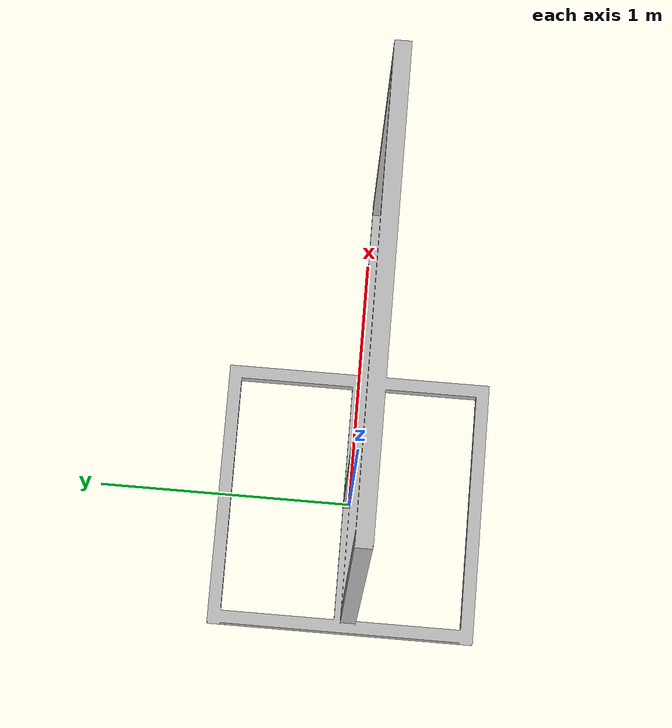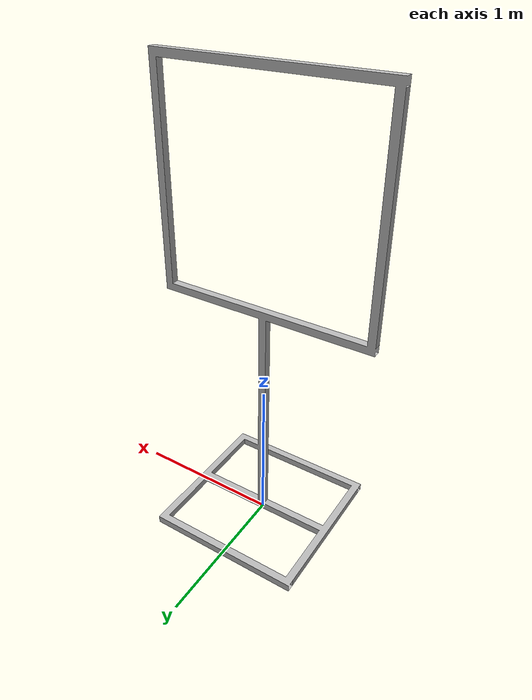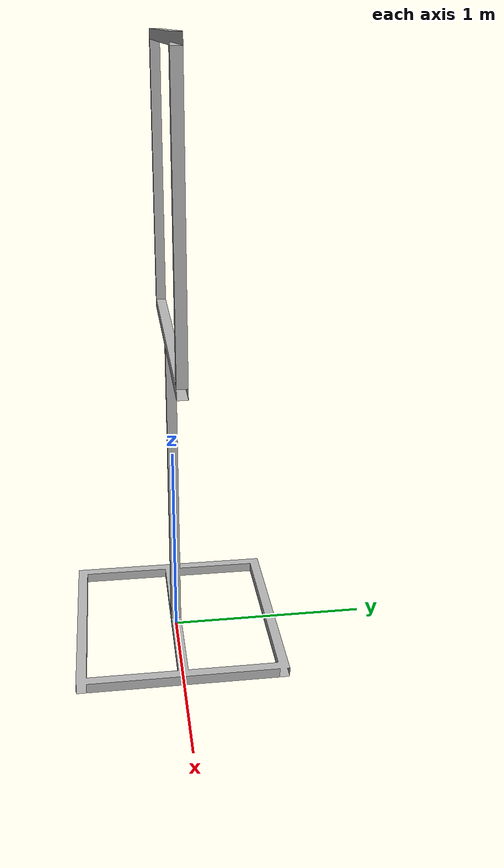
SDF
<?xml version='1.0'?>
<sdf version='1.4'>
  <model name="dronerace_gate_2018">
    <static>true</static>
    <pose>0 0 0 0 0 0</pose>

    <link name="dronerace_gate_2018">
      <visual name="gate">
        <geometry>
          <mesh>
            <uri>model://dronerace_gate_2018/normal_gate_2018.dae</uri>
          </mesh>
        </geometry>
      </visual>
      <collision name="gate_collision">
        <geometry>
          <mesh>
            <uri>model://dronerace_gate_2018/normal_gate_2018.dae</uri>
          </mesh>
        </geometry>
      </collision>
    </link>

  </model>
</sdf>
